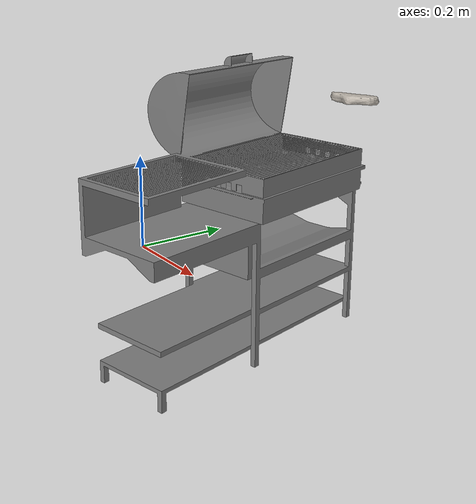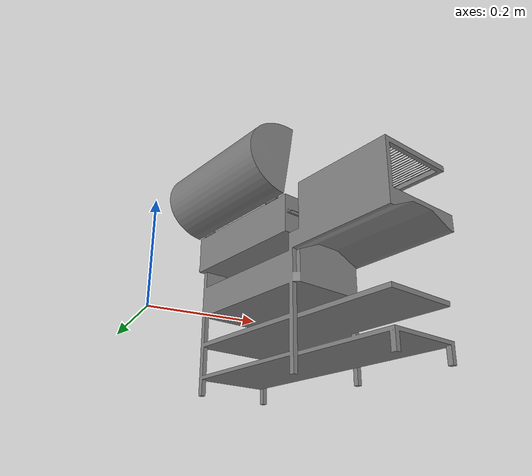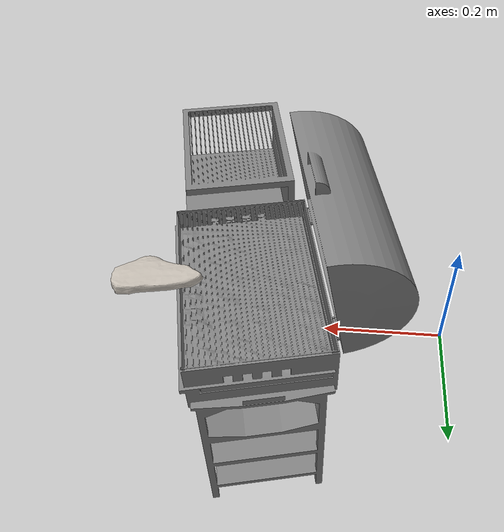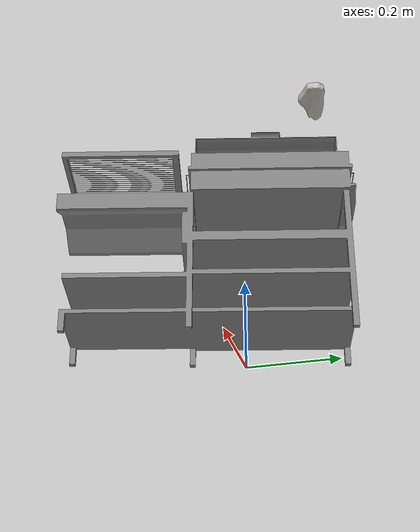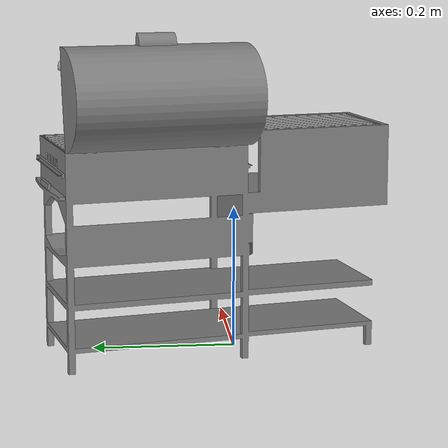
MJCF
<mujoco model="meat_off_grill_scene">
    <asset>
        <mesh name="chicken_mesh" file="../objects/rl_bench_mesh/meat_off_grill/chicken.obj"/>
        <mesh name="grill_mesh"   file="../objects/rl_bench_mesh/meat_off_grill/grill.obj"/>
        <mesh name="steak_mesh"   file="../objects/rl_bench_mesh/meat_off_grill/steak.obj"/>

        <texture name="chicken_tex" type="2d" file="../objects/rl_bench_mesh/meat_off_grill/chicken_2180013.png"/>
        <texture name="grill_tex"   type="2d" file="../objects/rl_bench_mesh/meat_off_grill/grill_2180010.png"/>
        <texture name="steak_tex"   type="2d" file="../objects/rl_bench_mesh/meat_off_grill/steak_2180015.png"/>

        <material name="chicken_mat" texture="chicken_tex"/>
        <material name="grill_mat"   texture="grill_tex"/>
        <material name="steak_mat"   texture="steak_tex"/>
    </asset>

    <worldbody>
        <body pos="0.33025404  0.02189426  0.18313332" quat="0.703 -0.703 -0.079 0.079" name="grill">
            <freejoint/>
            <geom type="mesh" mesh="grill_mesh" pos="-0.28 0.03 -1.0"/>
        </body>

        <body pos="0.4 0.23 0.355" quat="0.698 0.071 -0.707 0.089" name="steak">
            <freejoint/>
            <geom type="mesh" mesh="steak_mesh" material="steak_mat" pos="-0.28 0.1 -1.02"/>
        </body>
    </worldbody>
</mujoco>
